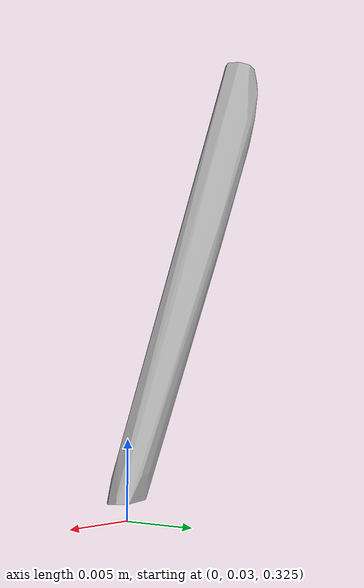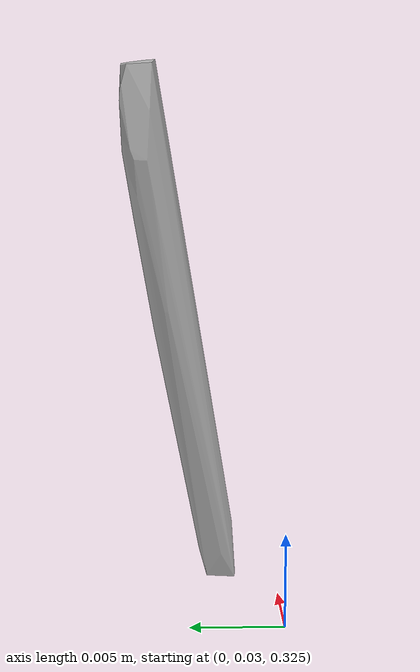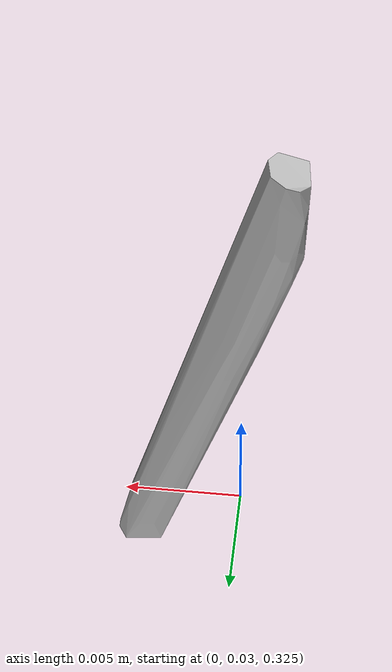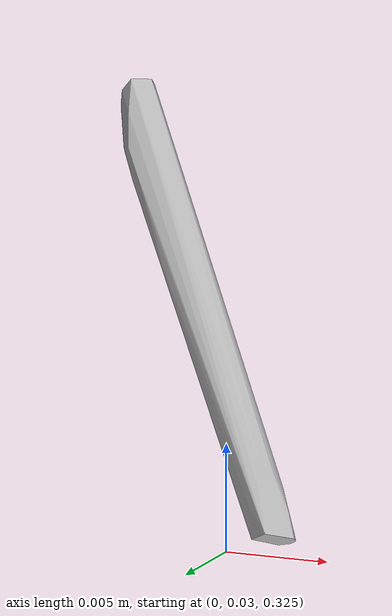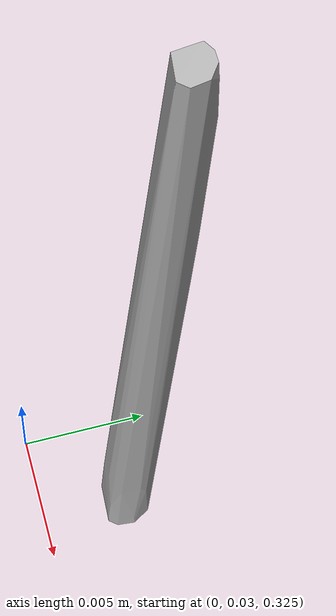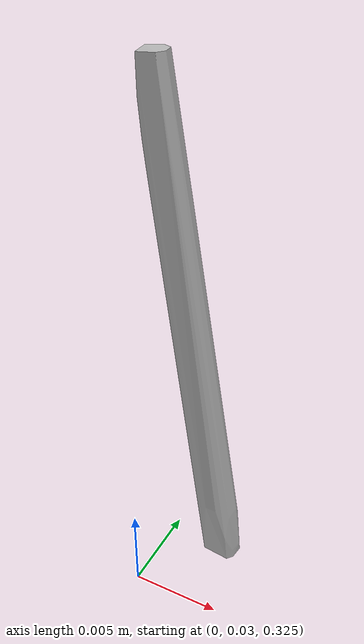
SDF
<?xml version="1.0"?>
<sdf version="1.7">
  <model name="vascular_partexport044">
    <link name="vascular_partexport044_body">
      <visual name="vascular_partexport044_visual">
        <geometry>
          <mesh>
            <uri>vascular_partexport044.obj</uri>
          </mesh>
        </geometry>
      </visual>
      <collision name="vascular_partexport044_collision">
        <geometry>
          <mesh>
            <uri>vascular_partexport044.obj</uri>
          </mesh>
        </geometry>
      </collision>
    </link>
    <frame name="vascular_partexport044_center">
      <pose relative_to="vascular_partexport044_body">0 0 0 0 0 0</pose>
    </frame>
  </model>
</sdf>
